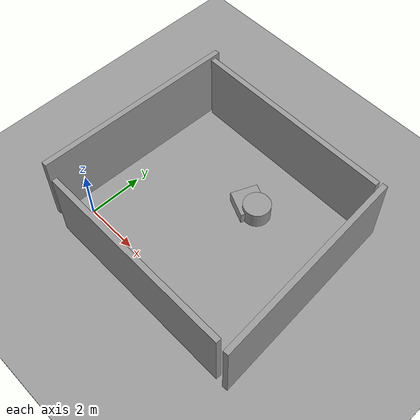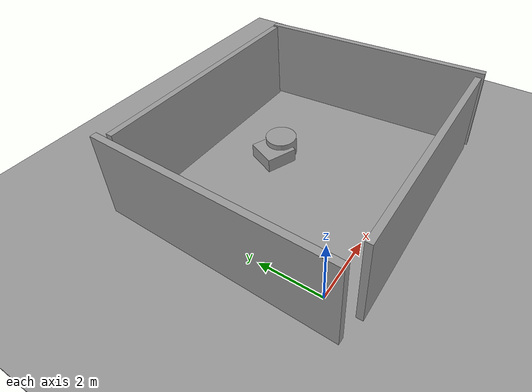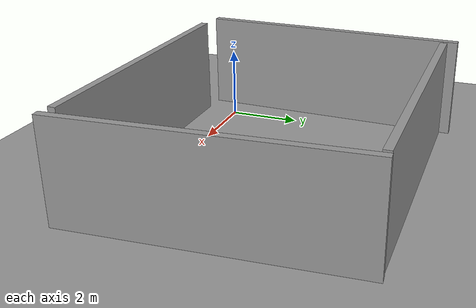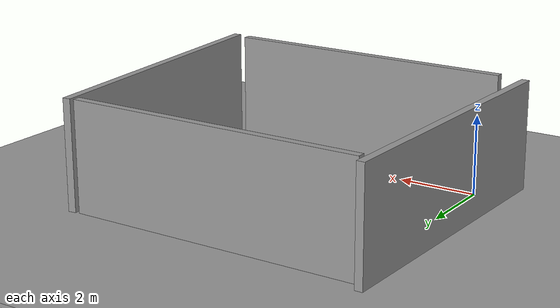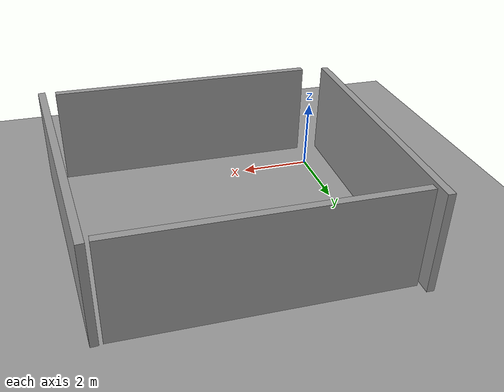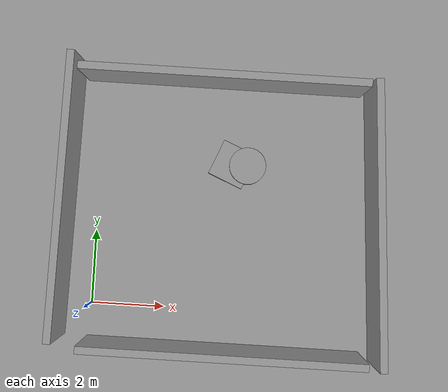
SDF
<sdf version="1.7">
 <world name="default">
  <light name="sun" type="directional">
   <pose>0 0 10 0 -0 0</pose>
   <diffuse>0.8 0.8 0.8 1</diffuse>
   <specular>0.2 0.2 0.2 1</specular>
   <attenuation>
    <range>1000</range>
    <constant>0.9</constant>
    <linear>0.01</linear>
    <quadratic>0.001</quadratic>
   </attenuation>
   <direction>-0.5 0.1 -0.9</direction>
   <spot><inner_angle>0</inner_angle><outer_angle>0</outer_angle><falloff>0</falloff></spot>
  </light>
  <model name="ground_plane">
   <static>1</static>
   <link name="link">
    <collision name="collision">
     <geometry><plane><normal>0 0 1</normal><size>100 100</size></plane></geometry>
     <surface>
      <contact><collide_bitmask>65535</collide_bitmask></contact>
      <friction><ode><mu>100</mu><mu2>50</mu2></ode></friction>
     </surface>
    </collision>
    <visual name="visual">
     <cast_shadows>0</cast_shadows>
     <geometry><plane><normal>0 0 1</normal><size>100 100</size></plane></geometry>
     <material>
      <script><uri>file://media/materials/scripts/gazebo.material</uri><name>Gazebo/Grey</name></script>
     </material>
    </visual>
   </link>
  </model>
  <gravity>0 0 -9.8</gravity>
  <magnetic_field>6e-06 2.3e-05 -4.2e-05</magnetic_field>
  <atmosphere type="adiabatic"/>
  <physics type="ode">
   <max_step_size>0.001</max_step_size>
   <real_time_factor>1</real_time_factor>
   <real_time_update_rate>1000</real_time_update_rate>
  </physics>
  <scene><ambient>0.4 0.4 0.4 1</ambient><background>0.7 0.7 0.7 1</background><shadows>1</shadows></scene>
  <spherical_coordinates>
   <surface_model>EARTH_WGS84</surface_model>
   <latitude_deg>0</latitude_deg>
   <longitude_deg>0</longitude_deg>
   <elevation>0</elevation>
   <heading_deg>0</heading_deg>
  </spherical_coordinates>
  <model name="unit_cylinder">
   <pose>4.05972 4.01096 0.19999 0 -0 0.03874</pose>
   <link name="link">
    <inertial>
     <mass>1</mass>
     <inertia><ixx>0.145833</ixx><ixy>0</ixy><ixz>0</ixz><iyy>0.145833</iyy><iyz>0</iyz><izz>0.125</izz></inertia>
    </inertial>
    <collision name="collision">
     <geometry><cylinder><radius>0.5</radius><length>1</length></cylinder></geometry>
    </collision>
    <visual name="visual">
     <geometry><cylinder><radius>0.5</radius><length>1</length></cylinder></geometry>
     <material>
      <script><name>Gazebo/Grey</name><uri>file://media/materials/scripts/gazebo.material</uri></script>
     </material>
    </visual>
   </link>
  </model>
  <model name="unit_box">
   <pose>3.6562 4.03396 0.010647 -3.14159 -0 2.74261</pose>
   <link name="link">
    <inertial>
     <mass>1</mass>
     <inertia>
      <ixx>0.166667</ixx>
      <ixy>0</ixy>
      <ixz>0</ixz>
      <iyy>0.166667</iyy>
      <iyz>0</iyz>
      <izz>0.166667</izz>
     </inertia>
    </inertial>
    <collision name="collision"><geometry><box><size>0.999997 0.999996 1.00002</size></box></geometry></collision>
    <visual name="visual">
     <geometry><box><size>0.999997 0.999996 1.00002</size></box></geometry>
     <material>
      <script><name>Gazebo/Grey</name><uri>file://media/materials/scripts/gazebo.material</uri></script>
     </material>
    </visual>
   </link>
  </model>
  <model name="ground_plane_0">
   <static>1</static>
   <link name="link">
    <collision name="collision">
     <geometry><plane><normal>0 0 1</normal><size>100 100</size></plane></geometry>
     <surface>
      <contact><collide_bitmask>65535</collide_bitmask></contact>
      <friction><ode><mu>100</mu><mu2>50</mu2></ode></friction>
     </surface>
    </collision>
    <visual name="visual">
     <cast_shadows>0</cast_shadows>
     <geometry><plane><normal>0 0 1</normal><size>100 100</size></plane></geometry>
     <material>
      <script><uri>file://media/materials/scripts/gazebo.material</uri><name>Gazebo/Grey</name></script>
     </material>
    </visual>
   </link>
   <pose>3.02016 2.72155 0 0 -0 0</pose>
  </model>
  <model name="grey_wall_0">
   <static>1</static>
   <link name="link">
    <pose>0 0 1.4 0 -0 0</pose>
    <collision name="collision"><geometry><box><size>7.5 0.2 2.8</size></box></geometry></collision>
    <visual name="visual">
     <cast_shadows>0</cast_shadows>
     <geometry><box><size>7.5 0.2 2.8</size></box></geometry>
     <material>
      <script>
       <uri>model://grey_wall/materials/scripts</uri>
       <uri>model://grey_wall/materials/textures</uri>
       <name>vrc/grey_wall</name>
      </script>
     </material>
    </visual>
   </link>
   <pose>3.67149 -1.00786 0 0 -0 0</pose>
  </model>
  <model name="grey_wall">
   <static>1</static>
   <link name="link">
    <pose>0 0 1.4 0 -0 0</pose>
    <collision name="collision"><geometry><box><size>7.5 0.2 2.8</size></box></geometry></collision>
    <visual name="visual">
     <cast_shadows>0</cast_shadows>
     <geometry><box><size>7.5 0.2 2.8</size></box></geometry>
     <material>
      <script>
       <uri>model://grey_wall/materials/scripts</uri>
       <uri>model://grey_wall/materials/textures</uri>
       <name>vrc/grey_wall</name>
      </script>
     </material>
    </visual>
   </link>
   <pose>3.30718 6.22439 0 0 -0 0</pose>
  </model>
  <model name="grey_wall_1">
   <static>1</static>
   <link name="link">
    <pose>0 0 1.4 0 -0 0</pose>
    <collision name="collision"><geometry><box><size>7.5 0.2 2.8</size></box></geometry></collision>
    <visual name="visual">
     <cast_shadows>0</cast_shadows>
     <geometry><box><size>7.5 0.2 2.8</size></box></geometry>
     <material>
      <script>
       <uri>model://grey_wall/materials/scripts</uri>
       <uri>model://grey_wall/materials/textures</uri>
       <name>vrc/grey_wall</name>
      </script>
     </material>
    </visual>
   </link>
   <pose>7.52667 2.61635 0 0 -0 1.64556</pose>
  </model>
  <model name="grey_wall_2">
   <static>1</static>
   <link name="link">
    <pose>0 0 1.4 0 -0 0</pose>
    <collision name="collision"><geometry><box><size>7.5 0.2 2.8</size></box></geometry></collision>
    <visual name="visual">
     <cast_shadows>0</cast_shadows>
     <geometry><box><size>7.5 0.2 2.8</size></box></geometry>
     <material>
      <script>
       <uri>model://grey_wall/materials/scripts</uri>
       <uri>model://grey_wall/materials/textures</uri>
       <name>vrc/grey_wall</name>
      </script>
     </material>
    </visual>
   </link>
   <pose>-0.715021 2.84581 0 0 -0 1.54949</pose>
  </model>
 </world>
</sdf>
